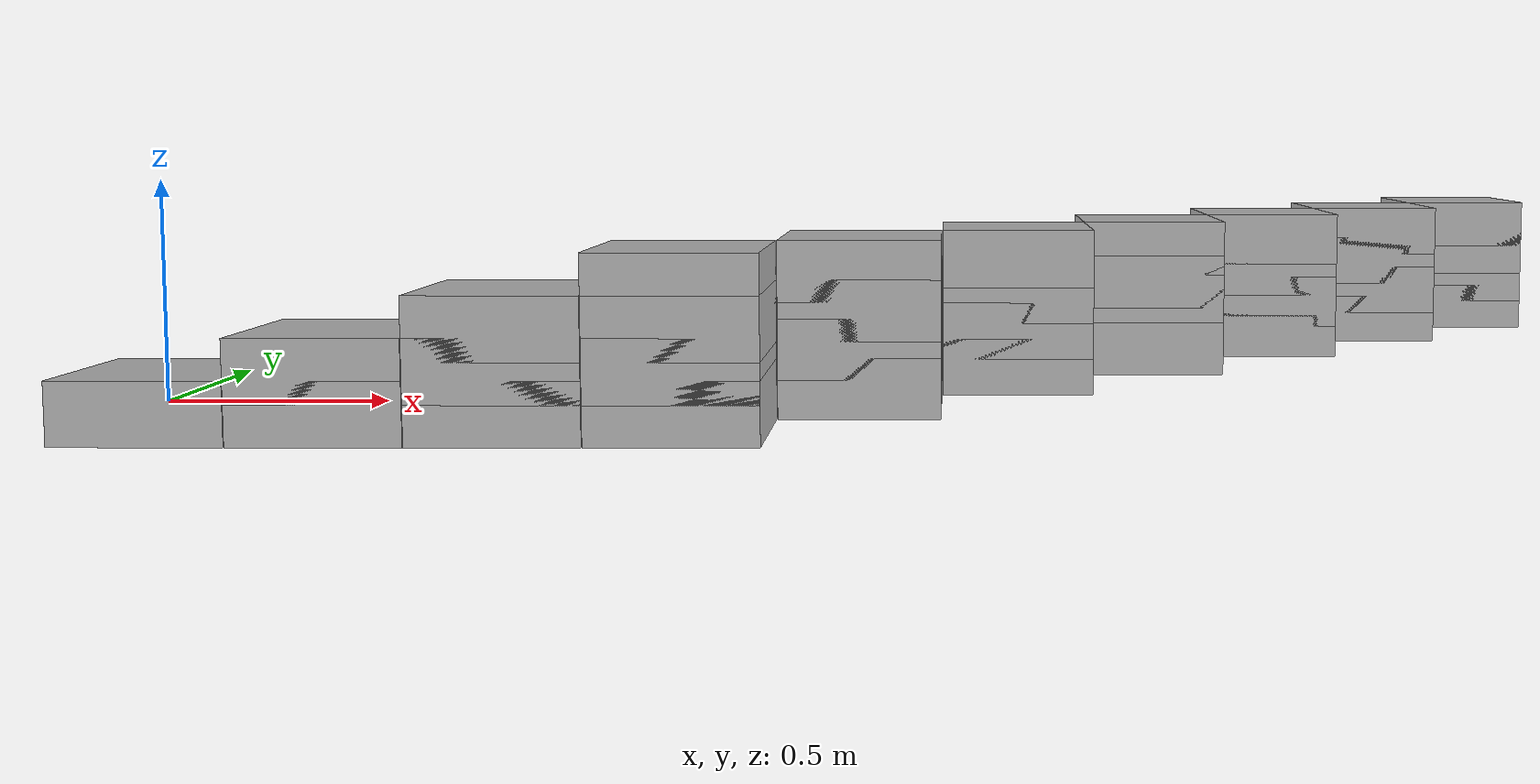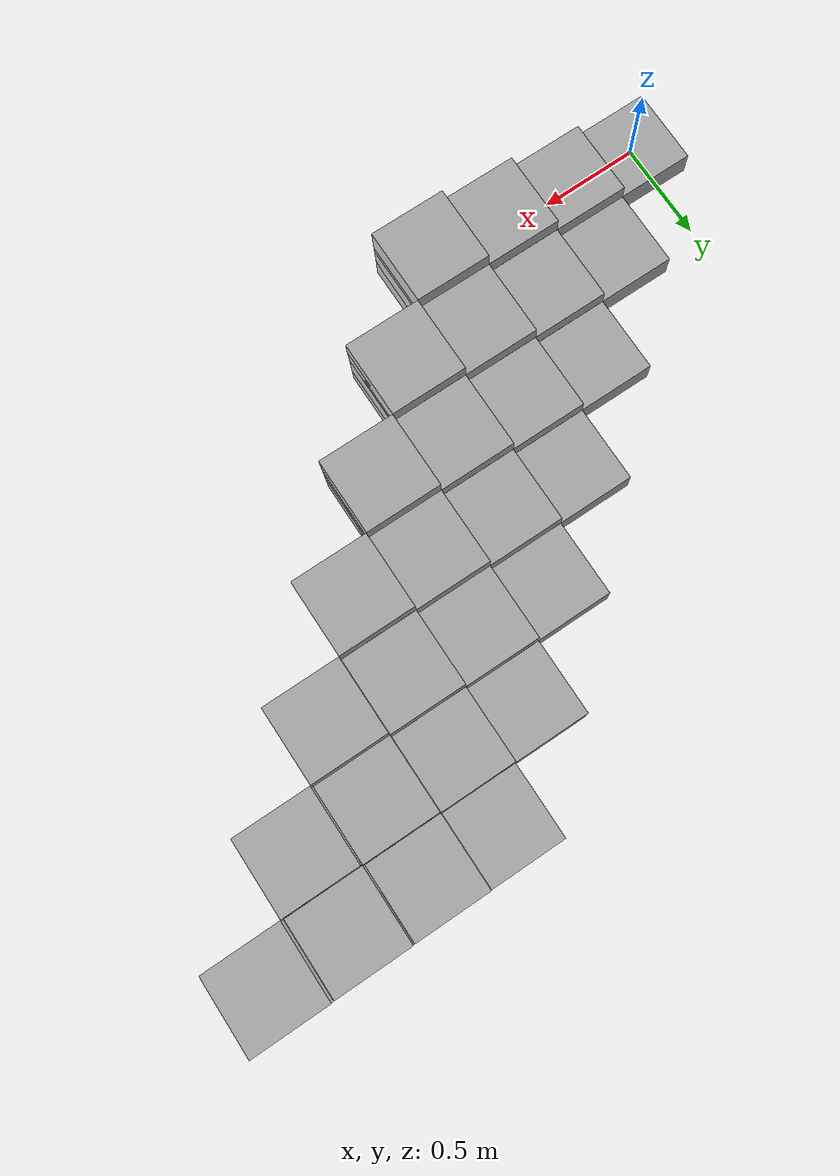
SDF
<?xml version="1.0" ?>
<sdf version="1.4">

  <model name="block_level_steps">
    <static>true</static>
    <pose>0 0 0 0 0 0</pose>

          <include>
            <name>block_0_0_0</name>
            <pose> 0.0 0.0 0.0 0 0 1.570796 </pose>
            <uri>model://cinder_block_wide</uri>
          </include>

          <include>
            <name>block_0_1_1</name>
            <pose> 0.389 0.0 0.093 0 0 1.570796 </pose>
            <uri>model://cinder_block_wide</uri>
          </include>
          <include>
            <name>block_0_1_0</name>
            <pose> 0.389 0.0 0.0 0 0 1.570796 </pose>
            <uri>model://cinder_block_wide</uri>
          </include>

          <include>
            <name>block_0_2_2</name>
            <pose> 0.778 0.0 0.186 0 0 1.570796 </pose>
            <uri>model://cinder_block_wide</uri>
          </include>
          <include>
            <name>block_0_2_1</name>
            <pose> 0.778 0.0 0.093 0 0 1.570796 </pose>
            <uri>model://cinder_block_wide</uri>
          </include>
          <include>
            <name>block_0_2_0</name>
            <pose> 0.778 0.0 0.0 0 0 1.570796 </pose>
            <uri>model://cinder_block_wide</uri>
          </include>

          <include>
            <name>block_0_3_3</name>
            <pose> 1.167 0.0 0.279 0 0 1.570796 </pose>
            <uri>model://cinder_block_wide</uri>
          </include>
          <include>
            <name>block_0_3_2</name>
            <pose> 1.167 0.0 0.186 0 0 1.570796 </pose>
            <uri>model://cinder_block_wide</uri>
          </include>
          <include>
            <name>block_0_3_1</name>
            <pose> 1.167 0.0 0.093 0 0 1.570796 </pose>
            <uri>model://cinder_block_wide</uri>
          </include>
          <include>
            <name>block_0_3_0</name>
            <pose> 1.167 0.0 0.0 0 0 1.570796 </pose>
            <uri>model://cinder_block_wide</uri>
          </include>

          <include>
            <name>block_1_0_0</name>
            <pose> 0.389 0.388 0.0 0 0 1.570796 </pose>
            <uri>model://cinder_block_wide</uri>
          </include>

          <include>
            <name>block_1_1_1</name>
            <pose> 0.778 0.388 0.093 0 0 1.570796 </pose>
            <uri>model://cinder_block_wide</uri>
          </include>
          <include>
            <name>block_1_1_0</name>
            <pose> 0.778 0.388 0.0 0 0 1.570796 </pose>
            <uri>model://cinder_block_wide</uri>
          </include>

          <include>
            <name>block_1_2_2</name>
            <pose> 1.167 0.388 0.186 0 0 1.570796 </pose>
            <uri>model://cinder_block_wide</uri>
          </include>
          <include>
            <name>block_1_2_1</name>
            <pose> 1.167 0.388 0.093 0 0 1.570796 </pose>
            <uri>model://cinder_block_wide</uri>
          </include>
          <include>
            <name>block_1_2_0</name>
            <pose> 1.167 0.388 0.0 0 0 1.570796 </pose>
            <uri>model://cinder_block_wide</uri>
          </include>

          <include>
            <name>block_1_3_3</name>
            <pose> 1.556 0.388 0.279 0 0 1.570796 </pose>
            <uri>model://cinder_block_wide</uri>
          </include>
          <include>
            <name>block_1_3_2</name>
            <pose> 1.556 0.388 0.186 0 0 1.570796 </pose>
            <uri>model://cinder_block_wide</uri>
          </include>
          <include>
            <name>block_1_3_1</name>
            <pose> 1.556 0.388 0.093 0 0 1.570796 </pose>
            <uri>model://cinder_block_wide</uri>
          </include>
          <include>
            <name>block_1_3_0</name>
            <pose> 1.556 0.388 0.0 0 0 1.570796 </pose>
            <uri>model://cinder_block_wide</uri>
          </include>

          <include>
            <name>block_2_0_0</name>
            <pose> 0.778 0.776 0.0 0 0 1.570796 </pose>
            <uri>model://cinder_block_wide</uri>
          </include>

          <include>
            <name>block_2_1_1</name>
            <pose> 1.167 0.776 0.093 0 0 1.570796 </pose>
            <uri>model://cinder_block_wide</uri>
          </include>
          <include>
            <name>block_2_1_0</name>
            <pose> 1.167 0.776 0.0 0 0 1.570796 </pose>
            <uri>model://cinder_block_wide</uri>
          </include>

          <include>
            <name>block_2_2_2</name>
            <pose> 1.556 0.776 0.186 0 0 1.570796 </pose>
            <uri>model://cinder_block_wide</uri>
          </include>
          <include>
            <name>block_2_2_1</name>
            <pose> 1.556 0.776 0.093 0 0 1.570796 </pose>
            <uri>model://cinder_block_wide</uri>
          </include>
          <include>
            <name>block_2_2_0</name>
            <pose> 1.556 0.776 0.0 0 0 1.570796 </pose>
            <uri>model://cinder_block_wide</uri>
          </include>

          <include>
            <name>block_2_3_3</name>
            <pose> 1.945 0.776 0.279 0 0 1.570796 </pose>
            <uri>model://cinder_block_wide</uri>
          </include>
          <include>
            <name>block_2_3_2</name>
            <pose> 1.945 0.776 0.186 0 0 1.570796 </pose>
            <uri>model://cinder_block_wide</uri>
          </include>
          <include>
            <name>block_2_3_1</name>
            <pose> 1.945 0.776 0.093 0 0 1.570796 </pose>
            <uri>model://cinder_block_wide</uri>
          </include>
          <include>
            <name>block_2_3_0</name>
            <pose> 1.945 0.776 0.0 0 0 1.570796 </pose>
            <uri>model://cinder_block_wide</uri>
          </include>

          <include>
            <name>block_3_0_0</name>
            <pose> 1.167 1.1640000000000001 0.0 0 0 1.570796 </pose>
            <uri>model://cinder_block_wide</uri>
          </include>

          <include>
            <name>block_3_1_1</name>
            <pose> 1.556 1.1640000000000001 0.093 0 0 1.570796 </pose>
            <uri>model://cinder_block_wide</uri>
          </include>
          <include>
            <name>block_3_1_0</name>
            <pose> 1.556 1.1640000000000001 0.0 0 0 1.570796 </pose>
            <uri>model://cinder_block_wide</uri>
          </include>

          <include>
            <name>block_3_2_2</name>
            <pose> 1.945 1.1640000000000001 0.186 0 0 1.570796 </pose>
            <uri>model://cinder_block_wide</uri>
          </include>
          <include>
            <name>block_3_2_1</name>
            <pose> 1.945 1.1640000000000001 0.093 0 0 1.570796 </pose>
            <uri>model://cinder_block_wide</uri>
          </include>
          <include>
            <name>block_3_2_0</name>
            <pose> 1.945 1.1640000000000001 0.0 0 0 1.570796 </pose>
            <uri>model://cinder_block_wide</uri>
          </include>

          <include>
            <name>block_3_3_3</name>
            <pose> 2.334 1.1640000000000001 0.279 0 0 1.570796 </pose>
            <uri>model://cinder_block_wide</uri>
          </include>
          <include>
            <name>block_3_3_2</name>
            <pose> 2.334 1.1640000000000001 0.186 0 0 1.570796 </pose>
            <uri>model://cinder_block_wide</uri>
          </include>
          <include>
            <name>block_3_3_1</name>
            <pose> 2.334 1.1640000000000001 0.093 0 0 1.570796 </pose>
            <uri>model://cinder_block_wide</uri>
          </include>
          <include>
            <name>block_3_3_0</name>
            <pose> 2.334 1.1640000000000001 0.0 0 0 1.570796 </pose>
            <uri>model://cinder_block_wide</uri>
          </include>

          <include>
            <name>block_4_0_0</name>
            <pose> 1.556 1.552 0.0 0 0 1.570796 </pose>
            <uri>model://cinder_block_wide</uri>
          </include>

          <include>
            <name>block_4_1_1</name>
            <pose> 1.945 1.552 0.093 0 0 1.570796 </pose>
            <uri>model://cinder_block_wide</uri>
          </include>
          <include>
            <name>block_4_1_0</name>
            <pose> 1.945 1.552 0.0 0 0 1.570796 </pose>
            <uri>model://cinder_block_wide</uri>
          </include>

          <include>
            <name>block_4_2_2</name>
            <pose> 2.334 1.552 0.186 0 0 1.570796 </pose>
            <uri>model://cinder_block_wide</uri>
          </include>
          <include>
            <name>block_4_2_1</name>
            <pose> 2.334 1.552 0.093 0 0 1.570796 </pose>
            <uri>model://cinder_block_wide</uri>
          </include>
          <include>
            <name>block_4_2_0</name>
            <pose> 2.334 1.552 0.0 0 0 1.570796 </pose>
            <uri>model://cinder_block_wide</uri>
          </include>

          <include>
            <name>block_4_3_3</name>
            <pose> 2.723 1.552 0.279 0 0 1.570796 </pose>
            <uri>model://cinder_block_wide</uri>
          </include>
          <include>
            <name>block_4_3_2</name>
            <pose> 2.723 1.552 0.186 0 0 1.570796 </pose>
            <uri>model://cinder_block_wide</uri>
          </include>
          <include>
            <name>block_4_3_1</name>
            <pose> 2.723 1.552 0.093 0 0 1.570796 </pose>
            <uri>model://cinder_block_wide</uri>
          </include>
          <include>
            <name>block_4_3_0</name>
            <pose> 2.723 1.552 0.0 0 0 1.570796 </pose>
            <uri>model://cinder_block_wide</uri>
          </include>

          <include>
            <name>block_5_0_0</name>
            <pose> 1.945 1.94 0.0 0 0 1.570796 </pose>
            <uri>model://cinder_block_wide</uri>
          </include>

          <include>
            <name>block_5_1_1</name>
            <pose> 2.334 1.94 0.093 0 0 1.570796 </pose>
            <uri>model://cinder_block_wide</uri>
          </include>
          <include>
            <name>block_5_1_0</name>
            <pose> 2.334 1.94 0.0 0 0 1.570796 </pose>
            <uri>model://cinder_block_wide</uri>
          </include>

          <include>
            <name>block_5_2_2</name>
            <pose> 2.723 1.94 0.186 0 0 1.570796 </pose>
            <uri>model://cinder_block_wide</uri>
          </include>
          <include>
            <name>block_5_2_1</name>
            <pose> 2.723 1.94 0.093 0 0 1.570796 </pose>
            <uri>model://cinder_block_wide</uri>
          </include>
          <include>
            <name>block_5_2_0</name>
            <pose> 2.723 1.94 0.0 0 0 1.570796 </pose>
            <uri>model://cinder_block_wide</uri>
          </include>

          <include>
            <name>block_5_3_3</name>
            <pose> 3.112 1.94 0.279 0 0 1.570796 </pose>
            <uri>model://cinder_block_wide</uri>
          </include>
          <include>
            <name>block_5_3_2</name>
            <pose> 3.112 1.94 0.186 0 0 1.570796 </pose>
            <uri>model://cinder_block_wide</uri>
          </include>
          <include>
            <name>block_5_3_1</name>
            <pose> 3.112 1.94 0.093 0 0 1.570796 </pose>
            <uri>model://cinder_block_wide</uri>
          </include>
          <include>
            <name>block_5_3_0</name>
            <pose> 3.112 1.94 0.0 0 0 1.570796 </pose>
            <uri>model://cinder_block_wide</uri>
          </include>

          <include>
            <name>block_6_0_0</name>
            <pose> 2.334 2.3280000000000003 0.0 0 0 1.570796 </pose>
            <uri>model://cinder_block_wide</uri>
          </include>

          <include>
            <name>block_6_1_1</name>
            <pose> 2.723 2.3280000000000003 0.093 0 0 1.570796 </pose>
            <uri>model://cinder_block_wide</uri>
          </include>
          <include>
            <name>block_6_1_0</name>
            <pose> 2.723 2.3280000000000003 0.0 0 0 1.570796 </pose>
            <uri>model://cinder_block_wide</uri>
          </include>

          <include>
            <name>block_6_2_2</name>
            <pose> 3.112 2.3280000000000003 0.186 0 0 1.570796 </pose>
            <uri>model://cinder_block_wide</uri>
          </include>
          <include>
            <name>block_6_2_1</name>
            <pose> 3.112 2.3280000000000003 0.093 0 0 1.570796 </pose>
            <uri>model://cinder_block_wide</uri>
          </include>
          <include>
            <name>block_6_2_0</name>
            <pose> 3.112 2.3280000000000003 0.0 0 0 1.570796 </pose>
            <uri>model://cinder_block_wide</uri>
          </include>

          <include>
            <name>block_6_3_3</name>
            <pose> 3.5010000000000003 2.3280000000000003 0.279 0 0 1.570796 </pose>
            <uri>model://cinder_block_wide</uri>
          </include>
          <include>
            <name>block_6_3_2</name>
            <pose> 3.5010000000000003 2.3280000000000003 0.186 0 0 1.570796 </pose>
            <uri>model://cinder_block_wide</uri>
          </include>
          <include>
            <name>block_6_3_1</name>
            <pose> 3.5010000000000003 2.3280000000000003 0.093 0 0 1.570796 </pose>
            <uri>model://cinder_block_wide</uri>
          </include>
          <include>
            <name>block_6_3_0</name>
            <pose> 3.5010000000000003 2.3280000000000003 0.0 0 0 1.570796 </pose>
            <uri>model://cinder_block_wide</uri>
          </include>

  </model>

</sdf>

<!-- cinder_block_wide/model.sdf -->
<sdf version="1.5">
  <model name="cinder_block_wide">
    <link name="link">
      <inertial>
        <pose>0 0  0.146 0 0 0</pose>
        <mass>5</mass>
        <!-- approximate as uniform box 0.387 x 0.387 x 0.092 m -->
        <inertia>
          <ixx>0.06814656666666667</ixx>
          <ixy>0.0000</ixy>
          <iyy>0.06814656666666667</iyy>
          <ixz>0.0000</ixz>
          <iyz>0.0000</iyz>
          <izz>0.1248075</izz>
        </inertia>
      </inertial>
      <visual name="visual">
        <geometry>

          <box>
            <size>0.387353556 0.387353556 0.146</size>
          </box>
        </geometry>
      </visual>

      <collision name="block_collision">
       <pose>0 0 0 0 0 0</pose>
        <geometry>
          <box>
            <size>0.387353556 0.387353556 0.146</size>
          </box>
        </geometry>
        <surface>
          <contact>
            <ode>
              <max_vel>0.1</max_vel>
              <min_depth>0.001</min_depth>
            </ode>
          </contact>
          <friction>
            <ode>
              <mu>1.0</mu>
              <mu2>1.0</mu2>
            </ode>
          </friction>
        </surface>

      </collision>

    </link>
  </model>
</sdf>
